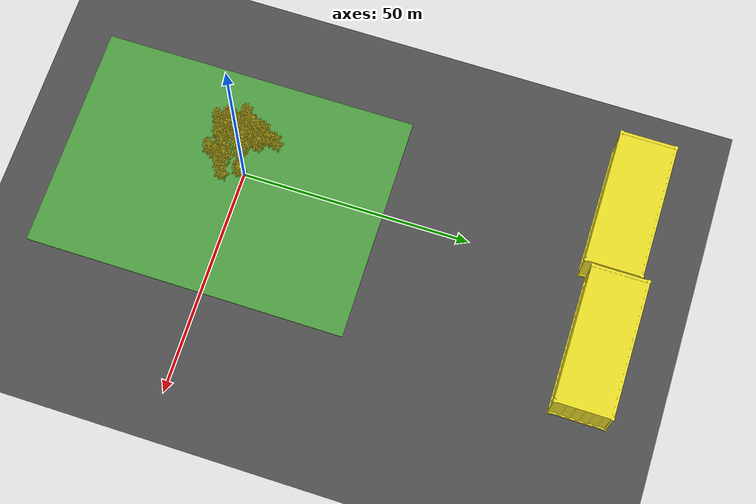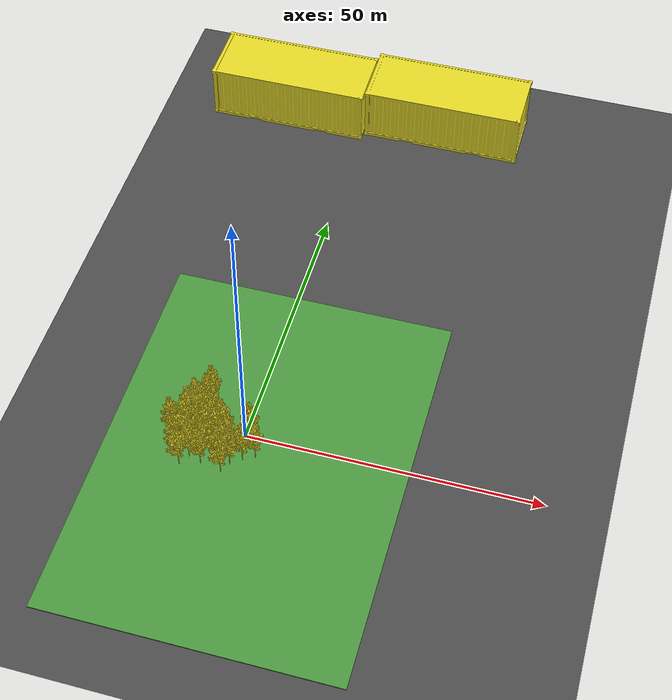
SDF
<sdf version="1.6">
 <world name="default">
  <model name="ground_plane">
   <static>1</static>
   <link name="link">
    <collision name="collision">
     <geometry><plane><normal>0 0 1</normal><size>40000 40000</size></plane></geometry>
     <surface>
      <contact><collide_bitmask>65535</collide_bitmask></contact>
      <friction><ode><mu>100</mu><mu2>50</mu2></ode></friction>
     </surface>
    </collision>
    <visual name="visual">
     <cast_shadows>0</cast_shadows>
     <geometry><plane><normal>0 0 1</normal><size>130 180</size></plane></geometry>
     <material>
      <script><uri>file://media/materials/scripts/gazebo.material</uri><name>Gazebo/Road</name></script>
     </material>
    </visual>
   </link>
  </model>
  <model name="grass_plane">
   <link name="link">
    <inertial>
     <mass>1</mass>
     <inertia><ixx>1</ixx><ixy>0</ixy><ixz>0</ixz><iyy>1</iyy><iyz>0</iyz><izz>1</izz></inertia>
    </inertial>
    <visual name="visual">
     <cast_shadows>0</cast_shadows>
     <geometry><box><size>50 70 0.2</size></box></geometry>
     <material>
      <script><uri>file://media/materials/scripts/gazebo.material</uri><name>Gazebo/Grass</name></script>
     </material>
    </visual>
    <collision name="collision">
     <geometry><box><size>10 30 0.2</size></box></geometry>
     <surface>
      <friction>
       <ode><mu>1</mu><mu2>1</mu2><fdir1>0 0 0</fdir1><slip1>0</slip1><slip2>0</slip2></ode>
       <torsional>
        <coefficient>1</coefficient>
        <patch_radius>0</patch_radius>
        <surface_radius>0</surface_radius>
        <use_patch_radius>1</use_patch_radius>
        <ode><slip>0</slip></ode>
       </torsional>
      </friction>
      <bounce><restitution_coefficient>0</restitution_coefficient><threshold>1e+06</threshold></bounce>
      <contact>
       <collide_without_contact>0</collide_without_contact>
       <collide_without_contact_bitmask>1</collide_without_contact_bitmask>
       <collide_bitmask>1</collide_bitmask>
       <ode>
        <soft_cfm>0</soft_cfm>
        <soft_erp>0.2</soft_erp>
        <kp>1e+13</kp>
        <kd>1</kd>
        <max_vel>0.01</max_vel>
        <min_depth>0</min_depth>
       </ode>
       <bullet>
        <split_impulse>1</split_impulse>
        <split_impulse_penetration_threshold>-0.01</split_impulse_penetration_threshold>
        <soft_cfm>0</soft_cfm>
        <soft_erp>0.2</soft_erp>
        <kp>1e+13</kp>
        <kd>1</kd>
       </bullet>
      </contact>
     </surface>
    </collision>
   </link>
   <static>1</static>
   <pose>2.79773 -3.97523 0 0 -0 0</pose>
  </model>
  <model name="tree0">
   <link name="tree_base">
    <inertial>
     <mass>50</mass>
     <inertia>
      <ixx>6.71748</ixx>
      <ixy>2.148e-05</ixy>
      <ixz>-2.4e-07</ixz>
      <iyy>6.71748</iyy>
      <iyz>-0.171807</iyz>
      <izz>6.71748</izz>
     </inertia>
    </inertial>
    <collision name="tree_base_fixed_joint_lump__collision_collision">
     <geometry>
      <mesh>
       <scale>0.4 0.4 0.6</scale>
       <uri>/home/ana/catkin_ws/src/frontier_exploration_3d/models/tree/meshes/tree_25k_mesh.dae</uri>
      </mesh>
     </geometry>
    </collision>
    <visual name="tree_base_visual">
     <geometry>
      <mesh>
       <scale>0.4 0.4 0.6</scale>
       <uri>/home/ana/catkin_ws/src/frontier_exploration_3d/models/tree/meshes/tree_25k_mesh.dae</uri>
      </mesh>
     </geometry>
     <material>
      <script><name>Gazebo/Yellow</name><uri>file://media/materials/scripts/gazebo.material</uri></script>
     </material>
    </visual>
   </link>
   <joint name="joint_tree_base" type="fixed"><child>tree_base</child><parent>world</parent></joint>
   <static>1</static>
   <pose>-11.5 1 0 0 -0 0</pose>
  </model>
  <model name="tree0_clone">
   <link name="tree_base">
    <inertial>
     <mass>50</mass>
     <inertia>
      <ixx>6.71748</ixx>
      <ixy>2.148e-05</ixy>
      <ixz>-2.4e-07</ixz>
      <iyy>6.71748</iyy>
      <iyz>-0.171807</iyz>
      <izz>6.71748</izz>
     </inertia>
    </inertial>
    <collision name="tree_base_fixed_joint_lump__collision_collision">
     <geometry>
      <mesh>
       <scale>0.4 0.4 0.6</scale>
       <uri>/home/ana/catkin_ws/src/frontier_exploration_3d/models/tree/meshes/tree_25k_mesh.dae</uri>
      </mesh>
     </geometry>
    </collision>
    <visual name="tree_base_visual">
     <geometry>
      <mesh>
       <scale>0.4 0.4 0.6</scale>
       <uri>/home/ana/catkin_ws/src/frontier_exploration_3d/models/tree/meshes/tree_25k_mesh.dae</uri>
      </mesh>
     </geometry>
     <material>
      <script><name>Gazebo/Yellow</name><uri>file://media/materials/scripts/gazebo.material</uri></script>
     </material>
    </visual>
   </link>
   <joint name="joint_tree_base" type="fixed"><child>tree_base</child><parent>world</parent></joint>
   <static>1</static>
   <pose>-8.08772 0.204282 0 0 -0 0</pose>
  </model>
  <model name="tree0_clone_0">
   <link name="tree_base">
    <inertial>
     <mass>50</mass>
     <inertia>
      <ixx>6.71748</ixx>
      <ixy>2.148e-05</ixy>
      <ixz>-2.4e-07</ixz>
      <iyy>6.71748</iyy>
      <iyz>-0.171807</iyz>
      <izz>6.71748</izz>
     </inertia>
    </inertial>
    <collision name="tree_base_fixed_joint_lump__collision_collision">
     <geometry>
      <mesh>
       <scale>0.4 0.4 0.6</scale>
       <uri>/home/ana/catkin_ws/src/frontier_exploration_3d/models/tree/meshes/tree_25k_mesh.dae</uri>
      </mesh>
     </geometry>
    </collision>
    <visual name="tree_base_visual">
     <geometry>
      <mesh>
       <scale>0.4 0.4 0.6</scale>
       <uri>/home/ana/catkin_ws/src/frontier_exploration_3d/models/tree/meshes/tree_25k_mesh.dae</uri>
      </mesh>
     </geometry>
     <material>
      <script><name>Gazebo/Yellow</name><uri>file://media/materials/scripts/gazebo.material</uri></script>
     </material>
    </visual>
   </link>
   <joint name="joint_tree_base" type="fixed"><child>tree_base</child><parent>world</parent></joint>
   <static>1</static>
   <pose>-5.36922 -3.35864 0 0 -0 0</pose>
  </model>
  <model name="tree0_clone_clone">
   <link name="tree_base">
    <inertial>
     <mass>50</mass>
     <inertia>
      <ixx>6.71748</ixx>
      <ixy>2.148e-05</ixy>
      <ixz>-2.4e-07</ixz>
      <iyy>6.71748</iyy>
      <iyz>-0.171807</iyz>
      <izz>6.71748</izz>
     </inertia>
    </inertial>
    <collision name="tree_base_fixed_joint_lump__collision_collision">
     <geometry>
      <mesh>
       <scale>0.4 0.4 0.6</scale>
       <uri>/home/ana/catkin_ws/src/frontier_exploration_3d/models/tree/meshes/tree_25k_mesh.dae</uri>
      </mesh>
     </geometry>
    </collision>
    <visual name="tree_base_visual">
     <geometry>
      <mesh>
       <scale>0.4 0.4 0.6</scale>
       <uri>/home/ana/catkin_ws/src/frontier_exploration_3d/models/tree/meshes/tree_25k_mesh.dae</uri>
      </mesh>
     </geometry>
     <material>
      <script><name>Gazebo/Yellow</name><uri>file://media/materials/scripts/gazebo.material</uri></script>
     </material>
    </visual>
   </link>
   <joint name="joint_tree_base" type="fixed"><child>tree_base</child><parent>world</parent></joint>
   <static>1</static>
   <pose>-3.93726 1.50002 0 0 -0 0</pose>
  </model>
  <model name="tree0_clone_clone_clone">
   <link name="tree_base">
    <inertial>
     <mass>50</mass>
     <inertia>
      <ixx>6.71748</ixx>
      <ixy>2.148e-05</ixy>
      <ixz>-2.4e-07</ixz>
      <iyy>6.71748</iyy>
      <iyz>-0.171807</iyz>
      <izz>6.71748</izz>
     </inertia>
    </inertial>
    <collision name="tree_base_fixed_joint_lump__collision_collision">
     <geometry>
      <mesh>
       <scale>0.4 0.4 0.6</scale>
       <uri>/home/ana/catkin_ws/src/frontier_exploration_3d/models/tree/meshes/tree_25k_mesh.dae</uri>
      </mesh>
     </geometry>
    </collision>
    <visual name="tree_base_visual">
     <geometry>
      <mesh>
       <scale>0.4 0.4 0.6</scale>
       <uri>/home/ana/catkin_ws/src/frontier_exploration_3d/models/tree/meshes/tree_25k_mesh.dae</uri>
      </mesh>
     </geometry>
     <material>
      <script><name>Gazebo/Yellow</name><uri>file://media/materials/scripts/gazebo.material</uri></script>
     </material>
    </visual>
   </link>
   <joint name="joint_tree_base" type="fixed"><child>tree_base</child><parent>world</parent></joint>
   <static>1</static>
   <pose>-1.1612 -0.337894 0 0 -0 0</pose>
  </model>
  <model name="tree0_clone_clone_clone_0">
   <link name="tree_base">
    <inertial>
     <mass>50</mass>
     <inertia>
      <ixx>6.71748</ixx>
      <ixy>2.148e-05</ixy>
      <ixz>-2.4e-07</ixz>
      <iyy>6.71748</iyy>
      <iyz>-0.171807</iyz>
      <izz>6.71748</izz>
     </inertia>
    </inertial>
    <collision name="tree_base_fixed_joint_lump__collision_collision">
     <geometry>
      <mesh>
       <scale>0.4 0.4 0.6</scale>
       <uri>/home/ana/catkin_ws/src/frontier_exploration_3d/models/tree/meshes/tree_25k_mesh.dae</uri>
      </mesh>
     </geometry>
    </collision>
    <visual name="tree_base_visual">
     <geometry>
      <mesh>
       <scale>0.4 0.4 0.6</scale>
       <uri>/home/ana/catkin_ws/src/frontier_exploration_3d/models/tree/meshes/tree_25k_mesh.dae</uri>
      </mesh>
     </geometry>
     <material>
      <script><name>Gazebo/Yellow</name><uri>file://media/materials/scripts/gazebo.material</uri></script>
     </material>
    </visual>
   </link>
   <joint name="joint_tree_base" type="fixed"><child>tree_base</child><parent>world</parent></joint>
   <static>1</static>
   <pose>-8.66352 -4.45008 0 0 -0 0</pose>
  </model>
  <model name="tree0_clone_clone_clone_1">
   <link name="tree_base">
    <inertial>
     <mass>50</mass>
     <inertia>
      <ixx>6.71748</ixx>
      <ixy>2.148e-05</ixy>
      <ixz>-2.4e-07</ixz>
      <iyy>6.71748</iyy>
      <iyz>-0.171807</iyz>
      <izz>6.71748</izz>
     </inertia>
    </inertial>
    <collision name="tree_base_fixed_joint_lump__collision_collision">
     <geometry>
      <mesh>
       <scale>0.4 0.4 0.6</scale>
       <uri>/home/ana/catkin_ws/src/frontier_exploration_3d/models/tree/meshes/tree_25k_mesh.dae</uri>
      </mesh>
     </geometry>
    </collision>
    <visual name="tree_base_visual">
     <geometry>
      <mesh>
       <scale>0.4 0.4 0.6</scale>
       <uri>/home/ana/catkin_ws/src/frontier_exploration_3d/models/tree/meshes/tree_25k_mesh.dae</uri>
      </mesh>
     </geometry>
     <material>
      <script><name>Gazebo/Yellow</name><uri>file://media/materials/scripts/gazebo.material</uri></script>
     </material>
    </visual>
   </link>
   <joint name="joint_tree_base" type="fixed"><child>tree_base</child><parent>world</parent></joint>
   <static>1</static>
   <pose>-1.69512 -4.12698 0 0 -0 0</pose>
  </model>
  <model name="tree0_clone_clone_clone_2">
   <link name="tree_base">
    <inertial>
     <mass>50</mass>
     <inertia>
      <ixx>6.71748</ixx>
      <ixy>2.148e-05</ixy>
      <ixz>-2.4e-07</ixz>
      <iyy>6.71748</iyy>
      <iyz>-0.171807</iyz>
      <izz>6.71748</izz>
     </inertia>
    </inertial>
    <collision name="tree_base_fixed_joint_lump__collision_collision">
     <geometry>
      <mesh>
       <scale>0.4 0.4 0.6</scale>
       <uri>/home/ana/catkin_ws/src/frontier_exploration_3d/models/tree/meshes/tree_25k_mesh.dae</uri>
      </mesh>
     </geometry>
    </collision>
    <visual name="tree_base_visual">
     <geometry>
      <mesh>
       <scale>0.4 0.4 0.6</scale>
       <uri>/home/ana/catkin_ws/src/frontier_exploration_3d/models/tree/meshes/tree_25k_mesh.dae</uri>
      </mesh>
     </geometry>
     <material>
      <script><name>Gazebo/Yellow</name><uri>file://media/materials/scripts/gazebo.material</uri></script>
     </material>
    </visual>
   </link>
   <joint name="joint_tree_base" type="fixed"><child>tree_base</child><parent>world</parent></joint>
   <static>1</static>
   <pose>2.83552 0.103742 0 0 -0 0</pose>
  </model>
  <model name="tree0_clone_clone_clone_3">
   <link name="tree_base">
    <inertial>
     <mass>50</mass>
     <inertia>
      <ixx>6.71748</ixx>
      <ixy>2.148e-05</ixy>
      <ixz>-2.4e-07</ixz>
      <iyy>6.71748</iyy>
      <iyz>-0.171807</iyz>
      <izz>6.71748</izz>
     </inertia>
    </inertial>
    <collision name="tree_base_fixed_joint_lump__collision_collision">
     <geometry>
      <mesh>
       <scale>0.4 0.4 0.6</scale>
       <uri>/home/ana/catkin_ws/src/frontier_exploration_3d/models/tree/meshes/tree_25k_mesh.dae</uri>
      </mesh>
     </geometry>
    </collision>
    <visual name="tree_base_visual">
     <geometry>
      <mesh>
       <scale>0.4 0.4 0.6</scale>
       <uri>/home/ana/catkin_ws/src/frontier_exploration_3d/models/tree/meshes/tree_25k_mesh.dae</uri>
      </mesh>
     </geometry>
     <material>
      <script><name>Gazebo/Yellow</name><uri>file://media/materials/scripts/gazebo.material</uri></script>
     </material>
    </visual>
   </link>
   <joint name="joint_tree_base" type="fixed"><child>tree_base</child><parent>world</parent></joint>
   <static>1</static>
   <pose>1.12875 3.41765 0 0 -0 0</pose>
  </model>
  <model name="tree0_clone_clone_clone_4">
   <link name="tree_base">
    <inertial>
     <mass>50</mass>
     <inertia>
      <ixx>6.71748</ixx>
      <ixy>2.148e-05</ixy>
      <ixz>-2.4e-07</ixz>
      <iyy>6.71748</iyy>
      <iyz>-0.171807</iyz>
      <izz>6.71748</izz>
     </inertia>
    </inertial>
    <collision name="tree_base_fixed_joint_lump__collision_collision">
     <geometry>
      <mesh>
       <scale>0.4 0.4 0.6</scale>
       <uri>/home/ana/catkin_ws/src/frontier_exploration_3d/models/tree/meshes/tree_25k_mesh.dae</uri>
      </mesh>
     </geometry>
    </collision>
    <visual name="tree_base_visual">
     <geometry>
      <mesh>
       <scale>0.4 0.4 0.6</scale>
       <uri>/home/ana/catkin_ws/src/frontier_exploration_3d/models/tree/meshes/tree_25k_mesh.dae</uri>
      </mesh>
     </geometry>
     <material>
      <script><name>Gazebo/Yellow</name><uri>file://media/materials/scripts/gazebo.material</uri></script>
     </material>
    </visual>
   </link>
   <joint name="joint_tree_base" type="fixed"><child>tree_base</child><parent>world</parent></joint>
   <static>1</static>
   <pose>-5.56383 5.00842 0 0 -0 0</pose>
  </model>
  <model name="container121">
   <link name="container_base">
    <pose>0 0 0.01 0 -0 0</pose>
    <inertial>
     <mass>500</mass>
     <inertia>
      <ixx>6.71748</ixx>
      <ixy>2.148e-05</ixy>
      <ixz>-2.4e-07</ixz>
      <iyy>6.71748</iyy>
      <iyz>-0.171807</iyz>
      <izz>6.71748</izz>
     </inertia>
    </inertial>
    <collision name="container_base_fixed_joint_lump__collision_collision">
     <geometry>
      <mesh>
       <scale>5 5 4</scale>
       <uri>/home/ana/catkin_ws/src/frontier_exploration_3d/models/container/meshes/container_mesh_1000.dae</uri>
      </mesh>
     </geometry>
    </collision>
    <visual name="container_base_visual">
     <geometry>
      <mesh>
       <scale>5 5 4</scale>
       <uri>/home/ana/catkin_ws/src/frontier_exploration_3d/models/container/meshes/container_mesh_1000.dae</uri>
      </mesh>
     </geometry>
     <material>
      <script><name>Gazebo/Yellow</name><uri>file://media/materials/scripts/gazebo.material</uri></script>
     </material>
    </visual>
   </link>
   <joint name="joint_container_base" type="fixed"><child>container_base</child><parent>world</parent></joint>
   <static>1</static>
   <pose>0.231223 75.2758 0 0 -0 0</pose>
  </model>
  <model name="container121_clone">
   <link name="container_base">
    <pose>0 0 0.01 0 -0 0</pose>
    <inertial>
     <mass>500</mass>
     <inertia>
      <ixx>6.71748</ixx>
      <ixy>2.148e-05</ixy>
      <ixz>-2.4e-07</ixz>
      <iyy>6.71748</iyy>
      <iyz>-0.171807</iyz>
      <izz>6.71748</izz>
     </inertia>
    </inertial>
    <collision name="container_base_fixed_joint_lump__collision_collision">
     <geometry>
      <mesh>
       <scale>5 5 4</scale>
       <uri>/home/ana/catkin_ws/src/frontier_exploration_3d/models/container/meshes/container_mesh_1000.dae</uri>
      </mesh>
     </geometry>
    </collision>
    <visual name="container_base_visual">
     <geometry>
      <mesh>
       <scale>5 5 4</scale>
       <uri>/home/ana/catkin_ws/src/frontier_exploration_3d/models/container/meshes/container_mesh_1000.dae</uri>
      </mesh>
     </geometry>
     <material>
      <script><name>Gazebo/Yellow</name><uri>file://media/materials/scripts/gazebo.material</uri></script>
     </material>
    </visual>
   </link>
   <joint name="joint_container_base" type="fixed"><child>container_base</child><parent>world</parent></joint>
   <static>1</static>
   <pose>-29.8689 73.6374 0 0 -0 0</pose>
  </model>
  <model name="tree0_clone_clone_clone_1_clone_4_clone_10">
   <link name="tree_base">
    <inertial>
     <mass>50</mass>
     <inertia>
      <ixx>6.71748</ixx>
      <ixy>2.148e-05</ixy>
      <ixz>-2.4e-07</ixz>
      <iyy>6.71748</iyy>
      <iyz>-0.171807</iyz>
      <izz>6.71748</izz>
     </inertia>
    </inertial>
    <collision name="tree_base_fixed_joint_lump__collision_collision">
     <geometry>
      <mesh>
       <scale>0.4 0.4 0.6</scale>
       <uri>/home/ana/catkin_ws/src/frontier_exploration_3d/models/tree/meshes/tree_25k_mesh.dae</uri>
      </mesh>
     </geometry>
    </collision>
    <visual name="tree_base_visual">
     <geometry>
      <mesh>
       <scale>0.4 0.4 0.6</scale>
       <uri>/home/ana/catkin_ws/src/frontier_exploration_3d/models/tree/meshes/tree_25k_mesh.dae</uri>
      </mesh>
     </geometry>
     <material>
      <script><name>Gazebo/Yellow</name><uri>file://media/materials/scripts/gazebo.material</uri></script>
     </material>
    </visual>
   </link>
   <joint name="joint_tree_base" type="fixed"><child>tree_base</child><parent>world</parent></joint>
   <static>1</static>
   <pose>-7.0481 8.87909 0 0 -0 0</pose>
  </model>
  <model name="tree0_clone_1">
   <link name="tree_base">
    <inertial>
     <mass>50</mass>
     <inertia>
      <ixx>6.71748</ixx>
      <ixy>2.148e-05</ixy>
      <ixz>-2.4e-07</ixz>
      <iyy>6.71748</iyy>
      <iyz>-0.171807</iyz>
      <izz>6.71748</izz>
     </inertia>
    </inertial>
    <collision name="tree_base_fixed_joint_lump__collision_collision">
     <geometry>
      <mesh>
       <scale>0.4 0.4 0.6</scale>
       <uri>/home/ana/catkin_ws/src/frontier_exploration_3d/models/tree/meshes/tree_25k_mesh.dae</uri>
      </mesh>
     </geometry>
    </collision>
    <visual name="tree_base_visual">
     <geometry>
      <mesh>
       <scale>0.4 0.4 0.6</scale>
       <uri>/home/ana/catkin_ws/src/frontier_exploration_3d/models/tree/meshes/tree_25k_mesh.dae</uri>
      </mesh>
     </geometry>
     <material>
      <script><name>Gazebo/Yellow</name><uri>file://media/materials/scripts/gazebo.material</uri></script>
     </material>
    </visual>
   </link>
   <joint name="joint_tree_base" type="fixed"><child>tree_base</child><parent>world</parent></joint>
   <static>1</static>
   <pose>-9.77325 -2.51959 0 0 -0 0</pose>
  </model>
  <model name="tree0_clone_2">
   <link name="tree_base">
    <inertial>
     <mass>50</mass>
     <inertia>
      <ixx>6.71748</ixx>
      <ixy>2.148e-05</ixy>
      <ixz>-2.4e-07</ixz>
      <iyy>6.71748</iyy>
      <iyz>-0.171807</iyz>
      <izz>6.71748</izz>
     </inertia>
    </inertial>
    <collision name="tree_base_fixed_joint_lump__collision_collision">
     <geometry>
      <mesh>
       <scale>0.4 0.4 0.6</scale>
       <uri>/home/ana/catkin_ws/src/frontier_exploration_3d/models/tree/meshes/tree_25k_mesh.dae</uri>
      </mesh>
     </geometry>
    </collision>
    <visual name="tree_base_visual">
     <geometry>
      <mesh>
       <scale>0.4 0.4 0.6</scale>
       <uri>/home/ana/catkin_ws/src/frontier_exploration_3d/models/tree/meshes/tree_25k_mesh.dae</uri>
      </mesh>
     </geometry>
     <material>
      <script><name>Gazebo/Yellow</name><uri>file://media/materials/scripts/gazebo.material</uri></script>
     </material>
    </visual>
   </link>
   <joint name="joint_tree_base" type="fixed"><child>tree_base</child><parent>world</parent></joint>
   <static>1</static>
   <pose>-7.57946 -2.56982 0 0 -0 0</pose>
  </model>
  <model name="tree0_clone_3">
   <link name="tree_base">
    <inertial>
     <mass>50</mass>
     <inertia>
      <ixx>6.71748</ixx>
      <ixy>2.148e-05</ixy>
      <ixz>-2.4e-07</ixz>
      <iyy>6.71748</iyy>
      <iyz>-0.171807</iyz>
      <izz>6.71748</izz>
     </inertia>
    </inertial>
    <collision name="tree_base_fixed_joint_lump__collision_collision">
     <geometry>
      <mesh>
       <scale>0.4 0.4 0.6</scale>
       <uri>/home/ana/catkin_ws/src/frontier_exploration_3d/models/tree/meshes/tree_25k_mesh.dae</uri>
      </mesh>
     </geometry>
    </collision>
    <visual name="tree_base_visual">
     <geometry>
      <mesh>
       <scale>0.4 0.4 0.6</scale>
       <uri>/home/ana/catkin_ws/src/frontier_exploration_3d/models/tree/meshes/tree_25k_mesh.dae</uri>
      </mesh>
     </geometry>
     <material>
      <script><name>Gazebo/Yellow</name><uri>file://media/materials/scripts/gazebo.material</uri></script>
     </material>
    </visual>
   </link>
   <joint name="joint_tree_base" type="fixed"><child>tree_base</child><parent>world</parent></joint>
   <static>1</static>
   <pose>-5.53581 -1.4938 0 0 -0 0</pose>
  </model>
  <model name="tree0_clone_4">
   <link name="tree_base">
    <inertial>
     <mass>50</mass>
     <inertia>
      <ixx>6.71748</ixx>
      <ixy>2.148e-05</ixy>
      <ixz>-2.4e-07</ixz>
      <iyy>6.71748</iyy>
      <iyz>-0.171807</iyz>
      <izz>6.71748</izz>
     </inertia>
    </inertial>
    <collision name="tree_base_fixed_joint_lump__collision_collision">
     <geometry>
      <mesh>
       <scale>0.4 0.4 0.6</scale>
       <uri>/home/ana/catkin_ws/src/frontier_exploration_3d/models/tree/meshes/tree_25k_mesh.dae</uri>
      </mesh>
     </geometry>
    </collision>
    <visual name="tree_base_visual">
     <geometry>
      <mesh>
       <scale>0.4 0.4 0.6</scale>
       <uri>/home/ana/catkin_ws/src/frontier_exploration_3d/models/tree/meshes/tree_25k_mesh.dae</uri>
      </mesh>
     </geometry>
     <material>
      <script><name>Gazebo/Yellow</name><uri>file://media/materials/scripts/gazebo.material</uri></script>
     </material>
    </visual>
   </link>
   <joint name="joint_tree_base" type="fixed"><child>tree_base</child><parent>world</parent></joint>
   <static>1</static>
   <pose>-9.60694 -1.0583 0 0 -0 0</pose>
  </model>
  <model name="tree0_clone_5">
   <link name="tree_base">
    <inertial>
     <mass>50</mass>
     <inertia>
      <ixx>6.71748</ixx>
      <ixy>2.148e-05</ixy>
      <ixz>-2.4e-07</ixz>
      <iyy>6.71748</iyy>
      <iyz>-0.171807</iyz>
      <izz>6.71748</izz>
     </inertia>
    </inertial>
    <collision name="tree_base_fixed_joint_lump__collision_collision">
     <geometry>
      <mesh>
       <scale>0.4 0.4 0.6</scale>
       <uri>/home/ana/catkin_ws/src/frontier_exploration_3d/models/tree/meshes/tree_25k_mesh.dae</uri>
      </mesh>
     </geometry>
    </collision>
    <visual name="tree_base_visual">
     <geometry>
      <mesh>
       <scale>0.4 0.4 0.6</scale>
       <uri>/home/ana/catkin_ws/src/frontier_exploration_3d/models/tree/meshes/tree_25k_mesh.dae</uri>
      </mesh>
     </geometry>
     <material>
      <script><name>Gazebo/Yellow</name><uri>file://media/materials/scripts/gazebo.material</uri></script>
     </material>
    </visual>
   </link>
   <joint name="joint_tree_base" type="fixed"><child>tree_base</child><parent>world</parent></joint>
   <static>1</static>
   <pose>-9.47046 1.37966 0 0 -0 0</pose>
  </model>
  <model name="tree0_clone_6">
   <link name="tree_base">
    <inertial>
     <mass>50</mass>
     <inertia>
      <ixx>6.71748</ixx>
      <ixy>2.148e-05</ixy>
      <ixz>-2.4e-07</ixz>
      <iyy>6.71748</iyy>
      <iyz>-0.171807</iyz>
      <izz>6.71748</izz>
     </inertia>
    </inertial>
    <collision name="tree_base_fixed_joint_lump__collision_collision">
     <geometry>
      <mesh>
       <scale>0.4 0.4 0.6</scale>
       <uri>/home/ana/catkin_ws/src/frontier_exploration_3d/models/tree/meshes/tree_25k_mesh.dae</uri>
      </mesh>
     </geometry>
    </collision>
    <visual name="tree_base_visual">
     <geometry>
      <mesh>
       <scale>0.4 0.4 0.6</scale>
       <uri>/home/ana/catkin_ws/src/frontier_exploration_3d/models/tree/meshes/tree_25k_mesh.dae</uri>
      </mesh>
     </geometry>
     <material>
      <script><name>Gazebo/Yellow</name><uri>file://media/materials/scripts/gazebo.material</uri></script>
     </material>
    </visual>
   </link>
   <joint name="joint_tree_base" type="fixed"><child>tree_base</child><parent>world</parent></joint>
   <static>1</static>
   <pose>-6.65964 -0.007236 0 0 -0 0</pose>
  </model>
  <model name="tree0_clone_7">
   <link name="tree_base">
    <inertial>
     <mass>50</mass>
     <inertia>
      <ixx>6.71748</ixx>
      <ixy>2.148e-05</ixy>
      <ixz>-2.4e-07</ixz>
      <iyy>6.71748</iyy>
      <iyz>-0.171807</iyz>
      <izz>6.71748</izz>
     </inertia>
    </inertial>
    <collision name="tree_base_fixed_joint_lump__collision_collision">
     <geometry>
      <mesh>
       <scale>0.4 0.4 0.6</scale>
       <uri>/home/ana/catkin_ws/src/frontier_exploration_3d/models/tree/meshes/tree_25k_mesh.dae</uri>
      </mesh>
     </geometry>
    </collision>
    <visual name="tree_base_visual">
     <geometry>
      <mesh>
       <scale>0.4 0.4 0.6</scale>
       <uri>/home/ana/catkin_ws/src/frontier_exploration_3d/models/tree/meshes/tree_25k_mesh.dae</uri>
      </mesh>
     </geometry>
     <material>
      <script><name>Gazebo/Yellow</name><uri>file://media/materials/scripts/gazebo.material</uri></script>
     </material>
    </visual>
   </link>
   <joint name="joint_tree_base" type="fixed"><child>tree_base</child><parent>world</parent></joint>
   <static>1</static>
   <pose>-3.30226 -1.7556 0 0 -0 0</pose>
  </model>
  <model name="tree0_clone_8">
   <link name="tree_base">
    <inertial>
     <mass>50</mass>
     <inertia>
      <ixx>6.71748</ixx>
      <ixy>2.148e-05</ixy>
      <ixz>-2.4e-07</ixz>
      <iyy>6.71748</iyy>
      <iyz>-0.171807</iyz>
      <izz>6.71748</izz>
     </inertia>
    </inertial>
    <collision name="tree_base_fixed_joint_lump__collision_collision">
     <geometry>
      <mesh>
       <scale>0.4 0.4 0.6</scale>
       <uri>/home/ana/catkin_ws/src/frontier_exploration_3d/models/tree/meshes/tree_25k_mesh.dae</uri>
      </mesh>
     </geometry>
    </collision>
    <visual name="tree_base_visual">
     <geometry>
      <mesh>
       <scale>0.4 0.4 0.6</scale>
       <uri>/home/ana/catkin_ws/src/frontier_exploration_3d/models/tree/meshes/tree_25k_mesh.dae</uri>
      </mesh>
     </geometry>
     <material>
      <script><name>Gazebo/Yellow</name><uri>file://media/materials/scripts/gazebo.material</uri></script>
     </material>
    </visual>
   </link>
   <joint name="joint_tree_base" type="fixed"><child>tree_base</child><parent>world</parent></joint>
   <static>1</static>
   <pose>-5.77873 1.5854 0 0 -0 0</pose>
  </model>
  <model name="tree0_clone_9">
   <link name="tree_base">
    <inertial>
     <mass>50</mass>
     <inertia>
      <ixx>6.71748</ixx>
      <ixy>2.148e-05</ixy>
      <ixz>-2.4e-07</ixz>
      <iyy>6.71748</iyy>
      <iyz>-0.171807</iyz>
      <izz>6.71748</izz>
     </inertia>
    </inertial>
    <collision name="tree_base_fixed_joint_lump__collision_collision">
     <geometry>
      <mesh>
       <scale>0.4 0.4 0.6</scale>
       <uri>/home/ana/catkin_ws/src/frontier_exploration_3d/models/tree/meshes/tree_25k_mesh.dae</uri>
      </mesh>
     </geometry>
    </collision>
    <visual name="tree_base_visual">
     <geometry>
      <mesh>
       <scale>0.4 0.4 0.6</scale>
       <uri>/home/ana/catkin_ws/src/frontier_exploration_3d/models/tree/meshes/tree_25k_mesh.dae</uri>
      </mesh>
     </geometry>
     <material>
      <script><name>Gazebo/Yellow</name><uri>file://media/materials/scripts/gazebo.material</uri></script>
     </material>
    </visual>
   </link>
   <joint name="joint_tree_base" type="fixed"><child>tree_base</child><parent>world</parent></joint>
   <static>1</static>
   <pose>-7.49225 2.77874 0 0 -0 0</pose>
  </model>
  <model name="tree0_clone_10">
   <link name="tree_base">
    <inertial>
     <mass>50</mass>
     <inertia>
      <ixx>6.71748</ixx>
      <ixy>2.148e-05</ixy>
      <ixz>-2.4e-07</ixz>
      <iyy>6.71748</iyy>
      <iyz>-0.171807</iyz>
      <izz>6.71748</izz>
     </inertia>
    </inertial>
    <collision name="tree_base_fixed_joint_lump__collision_collision">
     <geometry>
      <mesh>
       <scale>0.4 0.4 0.6</scale>
       <uri>/home/ana/catkin_ws/src/frontier_exploration_3d/models/tree/meshes/tree_25k_mesh.dae</uri>
      </mesh>
     </geometry>
    </collision>
    <visual name="tree_base_visual">
     <geometry>
      <mesh>
       <scale>0.4 0.4 0.6</scale>
       <uri>/home/ana/catkin_ws/src/frontier_exploration_3d/models/tree/meshes/tree_25k_mesh.dae</uri>
      </mesh>
     </geometry>
     <material>
      <script><name>Gazebo/Yellow</name><uri>file://media/materials/scripts/gazebo.material</uri></script>
     </material>
    </visual>
   </link>
   <joint name="joint_tree_base" type="fixed"><child>tree_base</child><parent>world</parent></joint>
   <static>1</static>
   <pose>-9.53012 3.55823 0 0 -0 0</pose>
  </model>
  <model name="tree0_clone_11">
   <link name="tree_base">
    <inertial>
     <mass>50</mass>
     <inertia>
      <ixx>6.71748</ixx>
      <ixy>2.148e-05</ixy>
      <ixz>-2.4e-07</ixz>
      <iyy>6.71748</iyy>
      <iyz>-0.171807</iyz>
      <izz>6.71748</izz>
     </inertia>
    </inertial>
    <collision name="tree_base_fixed_joint_lump__collision_collision">
     <geometry>
      <mesh>
       <scale>0.4 0.4 0.6</scale>
       <uri>/home/ana/catkin_ws/src/frontier_exploration_3d/models/tree/meshes/tree_25k_mesh.dae</uri>
      </mesh>
     </geometry>
    </collision>
    <visual name="tree_base_visual">
     <geometry>
      <mesh>
       <scale>0.4 0.4 0.6</scale>
       <uri>/home/ana/catkin_ws/src/frontier_exploration_3d/models/tree/meshes/tree_25k_mesh.dae</uri>
      </mesh>
     </geometry>
     <material>
      <script><name>Gazebo/Yellow</name><uri>file://media/materials/scripts/gazebo.material</uri></script>
     </material>
    </visual>
   </link>
   <joint name="joint_tree_base" type="fixed"><child>tree_base</child><parent>world</parent></joint>
   <static>1</static>
   <pose>-7.14311 4.11976 0 0 -0 0</pose>
  </model>
  <model name="tree0_clone_12">
   <link name="tree_base">
    <inertial>
     <mass>50</mass>
     <inertia>
      <ixx>6.71748</ixx>
      <ixy>2.148e-05</ixy>
      <ixz>-2.4e-07</ixz>
      <iyy>6.71748</iyy>
      <iyz>-0.171807</iyz>
      <izz>6.71748</izz>
     </inertia>
    </inertial>
    <collision name="tree_base_fixed_joint_lump__collision_collision">
     <geometry>
      <mesh>
       <scale>0.4 0.4 0.6</scale>
       <uri>/home/ana/catkin_ws/src/frontier_exploration_3d/models/tree/meshes/tree_25k_mesh.dae</uri>
      </mesh>
     </geometry>
    </collision>
    <visual name="tree_base_visual">
     <geometry>
      <mesh>
       <scale>0.4 0.4 0.6</scale>
       <uri>/home/ana/catkin_ws/src/frontier_exploration_3d/models/tree/meshes/tree_25k_mesh.dae</uri>
      </mesh>
     </geometry>
     <material>
      <script><name>Gazebo/Yellow</name><uri>file://media/materials/scripts/gazebo.material</uri></script>
     </material>
    </visual>
   </link>
   <joint name="joint_tree_base" type="fixed"><child>tree_base</child><parent>world</parent></joint>
   <static>1</static>
   <pose>-4.54625 2.65957 0 0 -0 0</pose>
  </model>
  <model name="tree0_clone_13">
   <link name="tree_base">
    <inertial>
     <mass>50</mass>
     <inertia>
      <ixx>6.71748</ixx>
      <ixy>2.148e-05</ixy>
      <ixz>-2.4e-07</ixz>
      <iyy>6.71748</iyy>
      <iyz>-0.171807</iyz>
      <izz>6.71748</izz>
     </inertia>
    </inertial>
    <collision name="tree_base_fixed_joint_lump__collision_collision">
     <geometry>
      <mesh>
       <scale>0.4 0.4 0.6</scale>
       <uri>/home/ana/catkin_ws/src/frontier_exploration_3d/models/tree/meshes/tree_25k_mesh.dae</uri>
      </mesh>
     </geometry>
    </collision>
    <visual name="tree_base_visual">
     <geometry>
      <mesh>
       <scale>0.4 0.4 0.6</scale>
       <uri>/home/ana/catkin_ws/src/frontier_exploration_3d/models/tree/meshes/tree_25k_mesh.dae</uri>
      </mesh>
     </geometry>
     <material>
      <script><name>Gazebo/Yellow</name><uri>file://media/materials/scripts/gazebo.material</uri></script>
     </material>
    </visual>
   </link>
   <joint name="joint_tree_base" type="fixed"><child>tree_base</child><parent>world</parent></joint>
   <static>1</static>
   <pose>-6.41597 5.51046 0 0 -0 0</pose>
  </model>
  <model name="tree0_clone_14">
   <link name="tree_base">
    <inertial>
     <mass>50</mass>
     <inertia>
      <ixx>6.71748</ixx>
      <ixy>2.148e-05</ixy>
      <ixz>-2.4e-07</ixz>
      <iyy>6.71748</iyy>
      <iyz>-0.171807</iyz>
      <izz>6.71748</izz>
     </inertia>
    </inertial>
    <collision name="tree_base_fixed_joint_lump__collision_collision">
     <geometry>
      <mesh>
       <scale>0.4 0.4 0.6</scale>
       <uri>/home/ana/catkin_ws/src/frontier_exploration_3d/models/tree/meshes/tree_25k_mesh.dae</uri>
      </mesh>
     </geometry>
    </collision>
    <visual name="tree_base_visual">
     <geometry>
      <mesh>
       <scale>0.4 0.4 0.6</scale>
       <uri>/home/ana/catkin_ws/src/frontier_exploration_3d/models/tree/meshes/tree_25k_mesh.dae</uri>
      </mesh>
     </geometry>
     <material>
      <script><name>Gazebo/Yellow</name><uri>file://media/materials/scripts/gazebo.material</uri></script>
     </material>
    </visual>
   </link>
   <joint name="joint_tree_base" type="fixed"><child>tree_base</child><parent>world</parent></joint>
   <static>1</static>
   <pose>-7.32348 6.76258 0 0 -0 0</pose>
  </model>
  <model name="tree0_clone_15">
   <link name="tree_base">
    <inertial>
     <mass>50</mass>
     <inertia>
      <ixx>6.71748</ixx>
      <ixy>2.148e-05</ixy>
      <ixz>-2.4e-07</ixz>
      <iyy>6.71748</iyy>
      <iyz>-0.171807</iyz>
      <izz>6.71748</izz>
     </inertia>
    </inertial>
    <collision name="tree_base_fixed_joint_lump__collision_collision">
     <geometry>
      <mesh>
       <scale>0.4 0.4 0.6</scale>
       <uri>/home/ana/catkin_ws/src/frontier_exploration_3d/models/tree/meshes/tree_25k_mesh.dae</uri>
      </mesh>
     </geometry>
    </collision>
    <visual name="tree_base_visual">
     <geometry>
      <mesh>
       <scale>0.4 0.4 0.6</scale>
       <uri>/home/ana/catkin_ws/src/frontier_exploration_3d/models/tree/meshes/tree_25k_mesh.dae</uri>
      </mesh>
     </geometry>
     <material>
      <script><name>Gazebo/Yellow</name><uri>file://media/materials/scripts/gazebo.material</uri></script>
     </material>
    </visual>
   </link>
   <joint name="joint_tree_base" type="fixed"><child>tree_base</child><parent>world</parent></joint>
   <static>1</static>
   <pose>-8.89065 5.75828 0 0 -0 0</pose>
  </model>
  <model name="tree0_clone_16">
   <link name="tree_base">
    <inertial>
     <mass>50</mass>
     <inertia>
      <ixx>6.71748</ixx>
      <ixy>2.148e-05</ixy>
      <ixz>-2.4e-07</ixz>
      <iyy>6.71748</iyy>
      <iyz>-0.171807</iyz>
      <izz>6.71748</izz>
     </inertia>
    </inertial>
    <collision name="tree_base_fixed_joint_lump__collision_collision">
     <geometry>
      <mesh>
       <scale>0.4 0.4 0.6</scale>
       <uri>/home/ana/catkin_ws/src/frontier_exploration_3d/models/tree/meshes/tree_25k_mesh.dae</uri>
      </mesh>
     </geometry>
    </collision>
    <visual name="tree_base_visual">
     <geometry>
      <mesh>
       <scale>0.4 0.4 0.6</scale>
       <uri>/home/ana/catkin_ws/src/frontier_exploration_3d/models/tree/meshes/tree_25k_mesh.dae</uri>
      </mesh>
     </geometry>
     <material>
      <script><name>Gazebo/Yellow</name><uri>file://media/materials/scripts/gazebo.material</uri></script>
     </material>
    </visual>
   </link>
   <joint name="joint_tree_base" type="fixed"><child>tree_base</child><parent>world</parent></joint>
   <static>1</static>
   <pose>-1.87061 -0.973241 0 0 -0 0</pose>
  </model>
  <model name="tree0_clone_17">
   <link name="tree_base">
    <inertial>
     <mass>50</mass>
     <inertia>
      <ixx>6.71748</ixx>
      <ixy>2.148e-05</ixy>
      <ixz>-2.4e-07</ixz>
      <iyy>6.71748</iyy>
      <iyz>-0.171807</iyz>
      <izz>6.71748</izz>
     </inertia>
    </inertial>
    <collision name="tree_base_fixed_joint_lump__collision_collision">
     <geometry>
      <mesh>
       <scale>0.4 0.4 0.6</scale>
       <uri>/home/ana/catkin_ws/src/frontier_exploration_3d/models/tree/meshes/tree_25k_mesh.dae</uri>
      </mesh>
     </geometry>
    </collision>
    <visual name="tree_base_visual">
     <geometry>
      <mesh>
       <scale>0.4 0.4 0.6</scale>
       <uri>/home/ana/catkin_ws/src/frontier_exploration_3d/models/tree/meshes/tree_25k_mesh.dae</uri>
      </mesh>
     </geometry>
     <material>
      <script><name>Gazebo/Yellow</name><uri>file://media/materials/scripts/gazebo.material</uri></script>
     </material>
    </visual>
   </link>
   <joint name="joint_tree_base" type="fixed"><child>tree_base</child><parent>world</parent></joint>
   <static>1</static>
   <pose>-0.751547 -2.27246 0 0 -0 0</pose>
  </model>
  <model name="tree0_clone_18">
   <link name="tree_base">
    <inertial>
     <mass>50</mass>
     <inertia>
      <ixx>6.71748</ixx>
      <ixy>2.148e-05</ixy>
      <ixz>-2.4e-07</ixz>
      <iyy>6.71748</iyy>
      <iyz>-0.171807</iyz>
      <izz>6.71748</izz>
     </inertia>
    </inertial>
    <collision name="tree_base_fixed_joint_lump__collision_collision">
     <geometry>
      <mesh>
       <scale>0.4 0.4 0.6</scale>
       <uri>/home/ana/catkin_ws/src/frontier_exploration_3d/models/tree/meshes/tree_25k_mesh.dae</uri>
      </mesh>
     </geometry>
    </collision>
    <visual name="tree_base_visual">
     <geometry>
      <mesh>
       <scale>0.4 0.4 0.6</scale>
       <uri>/home/ana/catkin_ws/src/frontier_exploration_3d/models/tree/meshes/tree_25k_mesh.dae</uri>
      </mesh>
     </geometry>
     <material>
      <script><name>Gazebo/Yellow</name><uri>file://media/materials/scripts/gazebo.material</uri></script>
     </material>
    </visual>
   </link>
   <joint name="joint_tree_base" type="fixed"><child>tree_base</child><parent>world</parent></joint>
   <static>1</static>
   <pose>0.96445 -0.896527 0 0 -0 0</pose>
  </model>
  <model name="tree0_clone_19">
   <link name="tree_base">
    <inertial>
     <mass>50</mass>
     <inertia>
      <ixx>6.71748</ixx>
      <ixy>2.148e-05</ixy>
      <ixz>-2.4e-07</ixz>
      <iyy>6.71748</iyy>
      <iyz>-0.171807</iyz>
      <izz>6.71748</izz>
     </inertia>
    </inertial>
    <collision name="tree_base_fixed_joint_lump__collision_collision">
     <geometry>
      <mesh>
       <scale>0.4 0.4 0.6</scale>
       <uri>/home/ana/catkin_ws/src/frontier_exploration_3d/models/tree/meshes/tree_25k_mesh.dae</uri>
      </mesh>
     </geometry>
    </collision>
    <visual name="tree_base_visual">
     <geometry>
      <mesh>
       <scale>0.4 0.4 0.6</scale>
       <uri>/home/ana/catkin_ws/src/frontier_exploration_3d/models/tree/meshes/tree_25k_mesh.dae</uri>
      </mesh>
     </geometry>
     <material>
      <script><name>Gazebo/Yellow</name><uri>file://media/materials/scripts/gazebo.material</uri></script>
     </material>
    </visual>
   </link>
   <joint name="joint_tree_base" type="fixed"><child>tree_base</child><parent>world</parent></joint>
   <static>1</static>
   <pose>-2.75324 2.20023 0 0 -0 0</pose>
  </model>
  <model name="tree0_clone_20">
   <link name="tree_base">
    <inertial>
     <mass>50</mass>
     <inertia>
      <ixx>6.71748</ixx>
      <ixy>2.148e-05</ixy>
      <ixz>-2.4e-07</ixz>
      <iyy>6.71748</iyy>
      <iyz>-0.171807</iyz>
      <izz>6.71748</izz>
     </inertia>
    </inertial>
    <collision name="tree_base_fixed_joint_lump__collision_collision">
     <geometry>
      <mesh>
       <scale>0.4 0.4 0.6</scale>
       <uri>/home/ana/catkin_ws/src/frontier_exploration_3d/models/tree/meshes/tree_25k_mesh.dae</uri>
      </mesh>
     </geometry>
    </collision>
    <visual name="tree_base_visual">
     <geometry>
      <mesh>
       <scale>0.4 0.4 0.6</scale>
       <uri>/home/ana/catkin_ws/src/frontier_exploration_3d/models/tree/meshes/tree_25k_mesh.dae</uri>
      </mesh>
     </geometry>
     <material>
      <script><name>Gazebo/Yellow</name><uri>file://media/materials/scripts/gazebo.material</uri></script>
     </material>
    </visual>
   </link>
   <joint name="joint_tree_base" type="fixed"><child>tree_base</child><parent>world</parent></joint>
   <static>1</static>
   <pose>-6.06275 3.79252 0 0 -0 0</pose>
  </model>
 </world>
</sdf>
